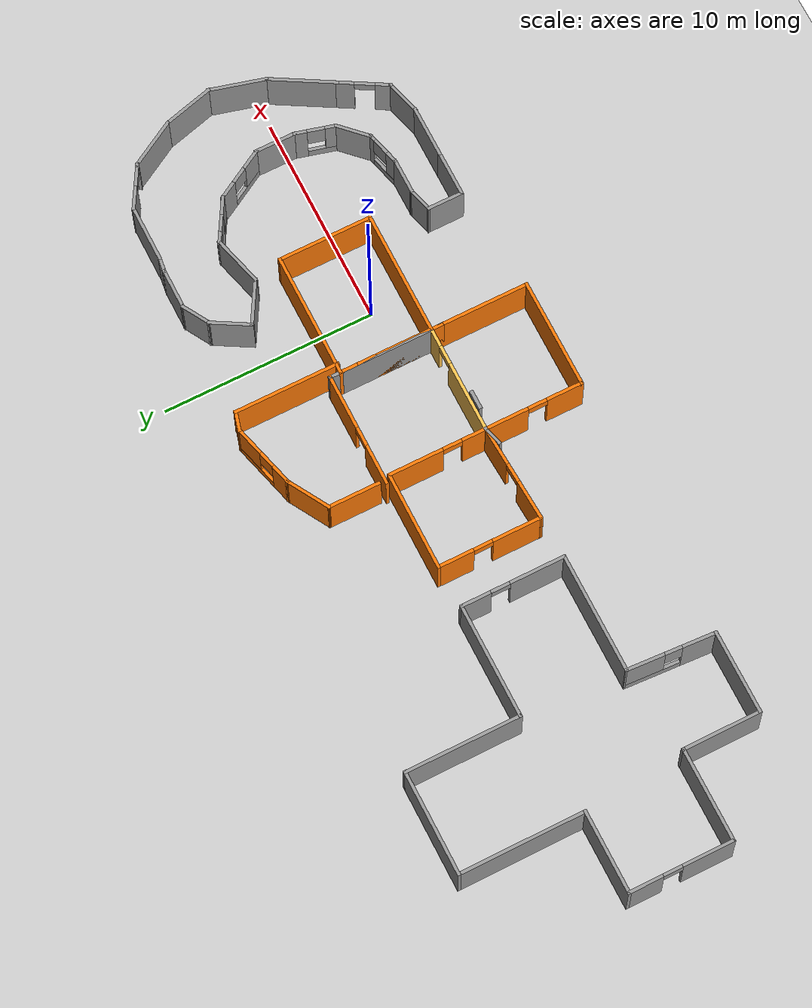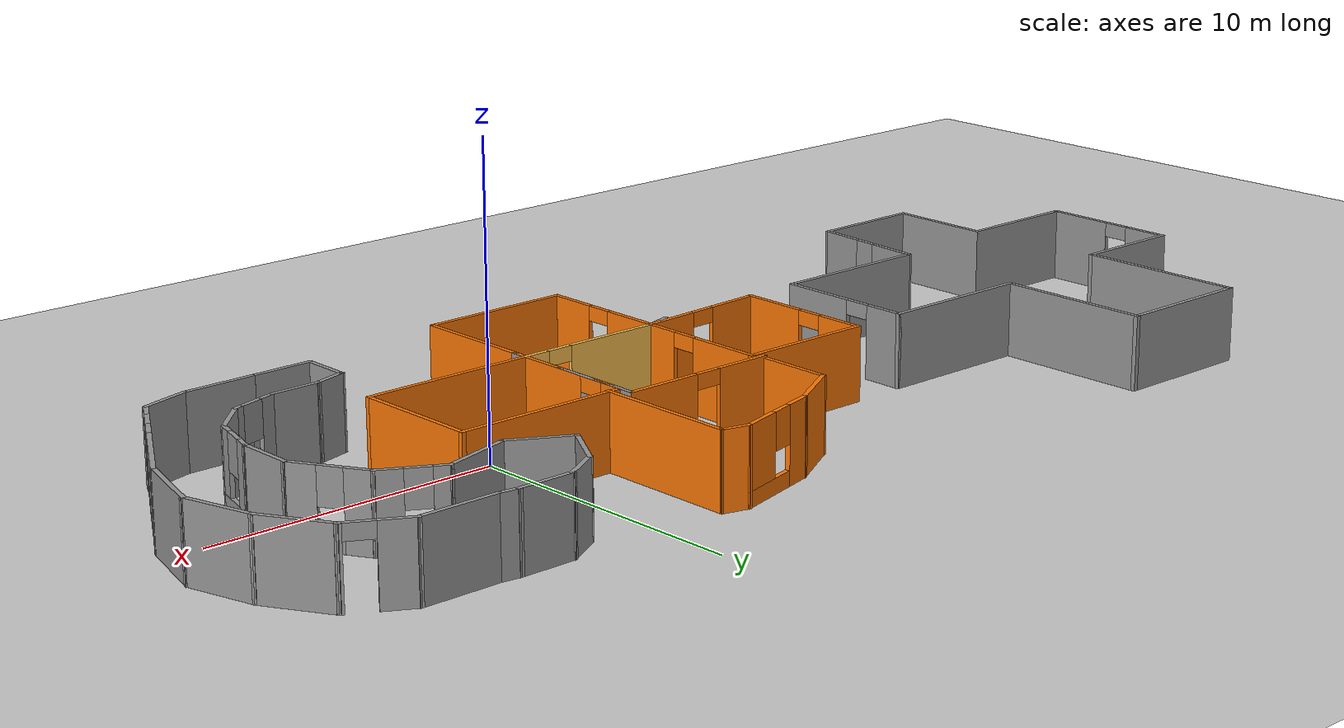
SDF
<sdf version="1.6">
 <world name="default">
  <model name="ground_plane">
   <static>1</static>
   <link name="link">
    <collision name="collision">
     <geometry><plane><normal>0 0 1</normal><size>100 100</size></plane></geometry>
     <surface>
      <contact><collide_bitmask>65535</collide_bitmask></contact>
      <friction><ode><mu>100</mu><mu2>50</mu2></ode></friction>
     </surface>
    </collision>
    <visual name="visual">
     <cast_shadows>0</cast_shadows>
     <geometry><plane><normal>0 0 1</normal><size>100 100</size></plane></geometry>
     <material>
      <script><uri>file://media/materials/scripts/gazebo.material</uri><name>Gazebo/Grey</name></script>
     </material>
    </visual>
   </link>
  </model>
  <model name="Cplusplus">
   <pose>-8.29888 1.0832 0 0 -0 0</pose>
   <link name="Door_1">
    <collision name="Door_1_Collision">
     <geometry><box><size>0.9 0.17 2</size></box></geometry>
     <pose>0 0 1 0 -0 0</pose>
    </collision>
    <visual name="Door_1_Visual">
     <pose>0 0 1 0 -0 0</pose>
     <geometry><box><size>0.9 0.17 2</size></box></geometry>
     <material>
      <script><uri>file://media/materials/scripts/gazebo.material</uri><name>Gazebo/Grey</name></script>
     </material>
    </visual>
    <pose>2.05873 -2.95917 0 0 -0 0</pose>
   </link>
   <link name="Wall_10">
    <pose>-4.07558 -0.465829 0 0 0 -1.5708</pose>
    <visual name="Wall_10_Visual_0">
     <pose>-1.63477 0 1.25 0 -0 0</pose>
     <geometry><box><size>1.73046 0.15 2.5</size></box></geometry>
     <material>
      <script><uri>file://media/materials/scripts/gazebo.material</uri><name>Gazebo/Grey</name></script>
      <ambient>0.996078 0.47451 0.0196078 1</ambient>
     </material>
     <meta><layer>0</layer></meta>
    </visual>
    <collision name="Wall_10_Collision_0">
     <geometry><box><size>1.73046 0.15 2.5</size></box></geometry>
     <pose>-1.63477 0 1.25 0 -0 0</pose>
    </collision>
    <visual name="Wall_10_Visual_1">
     <pose>1.31523 0 1.25 0 -0 0</pose>
     <geometry><box><size>2.36954 0.15 2.5</size></box></geometry>
     <material>
      <script><uri>file://media/materials/scripts/gazebo.material</uri><name>Gazebo/Grey</name></script>
      <ambient>0.996078 0.47451 0.0196078 1</ambient>
     </material>
     <meta><layer>0</layer></meta>
    </visual>
    <collision name="Wall_10_Collision_1">
     <geometry><box><size>2.36954 0.15 2.5</size></box></geometry>
     <pose>1.31523 0 1.25 0 -0 0</pose>
    </collision>
    <visual name="Wall_10_Visual_2">
     <pose>-0.319538 0 2.25 0 -0 0</pose>
     <geometry><box><size>0.9 0.15 0.5</size></box></geometry>
     <material>
      <script><uri>file://media/materials/scripts/gazebo.material</uri><name>Gazebo/Grey</name></script>
      <ambient>0.996078 0.47451 0.0196078 1</ambient>
     </material>
     <meta><layer>0</layer></meta>
    </visual>
    <collision name="Wall_10_Collision_2">
     <geometry><box><size>0.9 0.15 0.5</size></box></geometry>
     <pose>-0.319538 0 2.25 0 -0 0</pose>
    </collision>
   </link>
   <link name="Wall_11">
    <pose>-1.77558 -2.76583 0 0 -0 0.054294</pose>
    <visual name="Wall_11_Visual_0">
     <pose>-1.40985 0 1.25 0 -0 0</pose>
     <geometry><box><size>1.9371 0.15 2.5</size></box></geometry>
     <material>
      <script><uri>file://media/materials/scripts/gazebo.material</uri><name>Gazebo/Grey</name></script>
      <ambient>0.996078 0.47451 0.0196078 1</ambient>
     </material>
     <meta><layer>0</layer></meta>
    </visual>
    <collision name="Wall_11_Collision_0">
     <geometry><box><size>1.9371 0.15 2.5</size></box></geometry>
     <pose>-1.40985 0 1.25 0 -0 0</pose>
    </collision>
    <visual name="Wall_11_Visual_1">
     <pose>1.41855 0 1.25 0 -0 0</pose>
     <geometry><box><size>1.91969 0.15 2.5</size></box></geometry>
     <material>
      <script><uri>file://media/materials/scripts/gazebo.material</uri><name>Gazebo/Grey</name></script>
      <ambient>0.996078 0.47451 0.0196078 1</ambient>
     </material>
     <meta><layer>0</layer></meta>
    </visual>
    <collision name="Wall_11_Collision_1">
     <geometry><box><size>1.91969 0.15 2.5</size></box></geometry>
     <pose>1.41855 0 1.25 0 -0 0</pose>
    </collision>
    <visual name="Wall_11_Visual_2">
     <pose>0.008704 0 2.25 0 -0 0</pose>
     <geometry><box><size>0.9 0.15 0.5</size></box></geometry>
     <material>
      <script><uri>file://media/materials/scripts/gazebo.material</uri><name>Gazebo/Grey</name></script>
      <ambient>0.996078 0.47451 0.0196078 1</ambient>
     </material>
     <meta><layer>0</layer></meta>
    </visual>
    <collision name="Wall_11_Collision_2">
     <geometry><box><size>0.9 0.15 0.5</size></box></geometry>
     <pose>0.008704 0 2.25 0 -0 0</pose>
    </collision>
   </link>
   <link name="Wall_12">
    <collision name="Wall_12_Collision">
     <geometry><box><size>1 0.15 2.5</size></box></geometry>
     <pose>0 0 1.25 0 -0 0</pose>
    </collision>
    <visual name="Wall_12_Visual">
     <pose>0 0 1.25 0 -0 0</pose>
     <geometry><box><size>1 0.15 2.5</size></box></geometry>
     <material>
      <script><uri>file://media/materials/scripts/gazebo.material</uri><name>Gazebo/Grey</name></script>
      <ambient>0 0 0 0</ambient>
     </material>
     <meta><layer>0</layer></meta>
    </visual>
    <pose>0.113905 -2.75083 0 0 0 -2.87979</pose>
   </link>
   <link name="Wall_13">
    <pose>0.524424 -4.94083 0 0 0 -1.5708</pose>
    <visual name="Wall_13_Visual_0">
     <pose>-1.32659 0 1.25 0 -0 0</pose>
     <geometry><box><size>2.09682 0.15 2.5</size></box></geometry>
     <material>
      <script><uri>file://media/materials/scripts/gazebo.material</uri><name>Gazebo/Grey</name></script>
      <ambient>0.996078 0.47451 0.0196078 1</ambient>
     </material>
     <meta><layer>0</layer></meta>
    </visual>
    <collision name="Wall_13_Collision_0">
     <geometry><box><size>2.09682 0.15 2.5</size></box></geometry>
     <pose>-1.32659 0 1.25 0 -0 0</pose>
    </collision>
    <visual name="Wall_13_Visual_1">
     <pose>1.49841 0 1.25 0 -0 0</pose>
     <geometry><box><size>1.75318 0.15 2.5</size></box></geometry>
     <material>
      <script><uri>file://media/materials/scripts/gazebo.material</uri><name>Gazebo/Grey</name></script>
      <ambient>0.996078 0.47451 0.0196078 1</ambient>
     </material>
     <meta><layer>0</layer></meta>
    </visual>
    <collision name="Wall_13_Collision_1">
     <geometry><box><size>1.75318 0.15 2.5</size></box></geometry>
     <pose>1.49841 0 1.25 0 -0 0</pose>
    </collision>
    <visual name="Wall_13_Visual_2">
     <pose>0.171817 0 2.25 0 -0 0</pose>
     <geometry><box><size>0.9 0.15 0.5</size></box></geometry>
     <material>
      <script><uri>file://media/materials/scripts/gazebo.material</uri><name>Gazebo/Grey</name></script>
      <ambient>0.996078 0.47451 0.0196078 1</ambient>
     </material>
     <meta><layer>0</layer></meta>
    </visual>
    <collision name="Wall_13_Collision_2">
     <geometry><box><size>0.9 0.15 0.5</size></box></geometry>
     <pose>0.171817 0 2.25 0 -0 0</pose>
    </collision>
   </link>
   <link name="Wall_14">
    <collision name="Wall_14_Collision">
     <geometry><box><size>5.25 0.15 2.5</size></box></geometry>
     <pose>0 0 1.25 0 -0 0</pose>
    </collision>
    <visual name="Wall_14_Visual">
     <pose>0 0 1.25 0 -0 0</pose>
     <geometry><box><size>5.25 0.15 2.5</size></box></geometry>
     <material>
      <script><uri>file://media/materials/scripts/gazebo.material</uri><name>Gazebo/Grey</name></script>
      <ambient>0.996078 0.47451 0.0196078 1</ambient>
     </material>
     <meta><layer>0</layer></meta>
    </visual>
    <pose>3.07442 -7.24083 0 0 -0 0</pose>
   </link>
   <link name="Wall_15">
    <collision name="Wall_15_Collision">
     <geometry><box><size>4.25 0.15 2.5</size></box></geometry>
     <pose>0 0 1.25 0 -0 0</pose>
    </collision>
    <visual name="Wall_15_Visual">
     <pose>0 0 1.25 0 -0 0</pose>
     <geometry><box><size>4.25 0.15 2.5</size></box></geometry>
     <material>
      <script><uri>file://media/materials/scripts/gazebo.material</uri><name>Gazebo/Grey</name></script>
      <ambient>0.996078 0.47451 0.0196078 1</ambient>
     </material>
     <meta><layer>0</layer></meta>
    </visual>
    <pose>5.62442 -5.19083 0 0 -0 1.5708</pose>
   </link>
   <link name="Wall_16">
    <collision name="Wall_16_Collision">
     <geometry><box><size>0.65 0.15 2.5</size></box></geometry>
     <pose>0 0 1.25 0 -0 0</pose>
    </collision>
    <visual name="Wall_16_Visual">
     <pose>0 0 1.25 0 -0 0</pose>
     <geometry><box><size>0.65 0.15 2.5</size></box></geometry>
     <material>
      <script><uri>file://media/materials/scripts/gazebo.material</uri><name>Gazebo/Grey</name></script>
      <ambient>1 1 1 1</ambient>
     </material>
     <meta><layer>0</layer></meta>
    </visual>
    <pose>5.62442 -2.89083 0 0 -0 1.5708</pose>
   </link>
   <link name="Wall_17">
    <collision name="Wall_17_Collision">
     <geometry><box><size>6 0.15 2.5</size></box></geometry>
     <pose>0 0 1.25 0 -0 0</pose>
    </collision>
    <visual name="Wall_17_Visual">
     <pose>0 0 1.25 0 -0 0</pose>
     <geometry><box><size>6 0.15 2.5</size></box></geometry>
     <material>
      <script><uri>file://media/materials/scripts/gazebo.material</uri><name>Gazebo/Grey</name></script>
      <ambient>0.996078 0.47451 0.0196078 1</ambient>
     </material>
     <meta><layer>0</layer></meta>
    </visual>
    <pose>8.54942 -2.64083 0 0 -0 0</pose>
   </link>
   <link name="Wall_18">
    <collision name="Wall_18_Collision">
     <geometry><box><size>4.5 0.15 2.5</size></box></geometry>
     <pose>0 0 1.25 0 -0 0</pose>
    </collision>
    <visual name="Wall_18_Visual">
     <pose>0 0 1.25 0 -0 0</pose>
     <geometry><box><size>4.5 0.15 2.5</size></box></geometry>
     <material>
      <script><uri>file://media/materials/scripts/gazebo.material</uri><name>Gazebo/Grey</name></script>
      <ambient>0.996078 0.47451 0.0196078 1</ambient>
     </material>
     <meta><layer>0</layer></meta>
    </visual>
    <pose>11.4744 -0.465829 0 0 -0 1.5708</pose>
   </link>
   <link name="Wall_19">
    <collision name="Wall_19_Collision">
     <geometry><box><size>6 0.15 2.5</size></box></geometry>
     <pose>0 0 1.25 0 -0 0</pose>
    </collision>
    <visual name="Wall_19_Visual">
     <pose>0 0 1.25 0 -0 0</pose>
     <geometry><box><size>6 0.15 2.5</size></box></geometry>
     <material>
      <script><uri>file://media/materials/scripts/gazebo.material</uri><name>Gazebo/Grey</name></script>
      <ambient>0.996078 0.47451 0.0196078 1</ambient>
     </material>
     <meta><layer>0</layer></meta>
    </visual>
    <pose>8.54942 1.70917 0 0 -0 3.14159</pose>
   </link>
   <link name="Wall_20">
    <pose>5.62442 -0.715829 0 0 0 -1.5708</pose>
    <visual name="Wall_20_Visual_0">
     <pose>-2.0582 0 1.25 0 -0 0</pose>
     <geometry><box><size>0.883603 0.15 2.5</size></box></geometry>
     <material>
      <script><uri>file://media/materials/scripts/gazebo.material</uri><name>Gazebo/Grey</name></script>
      <ambient>0.996078 0.47451 0.0196078 1</ambient>
     </material>
     <meta><layer>0</layer></meta>
    </visual>
    <collision name="Wall_20_Collision_0">
     <geometry><box><size>0.883603 0.15 2.5</size></box></geometry>
     <pose>-2.0582 0 1.25 0 -0 0</pose>
    </collision>
    <visual name="Wall_20_Visual_1">
     <pose>0.891801 0 1.25 0 -0 0</pose>
     <geometry><box><size>3.2164 0.15 2.5</size></box></geometry>
     <material>
      <script><uri>file://media/materials/scripts/gazebo.material</uri><name>Gazebo/Grey</name></script>
      <ambient>0.996078 0.47451 0.0196078 1</ambient>
     </material>
     <meta><layer>0</layer></meta>
    </visual>
    <collision name="Wall_20_Collision_1">
     <geometry><box><size>3.2164 0.15 2.5</size></box></geometry>
     <pose>0.891801 0 1.25 0 -0 0</pose>
    </collision>
    <visual name="Wall_20_Visual_2">
     <pose>-1.1664 0 2.25 0 -0 0</pose>
     <geometry><box><size>0.9 0.15 0.5</size></box></geometry>
     <material>
      <script><uri>file://media/materials/scripts/gazebo.material</uri><name>Gazebo/Grey</name></script>
      <ambient>0.996078 0.47451 0.0196078 1</ambient>
     </material>
     <meta><layer>0</layer></meta>
    </visual>
    <collision name="Wall_20_Collision_2">
     <geometry><box><size>0.9 0.15 0.5</size></box></geometry>
     <pose>-1.1664 0 2.25 0 -0 0</pose>
    </collision>
   </link>
   <link name="Wall_22">
    <collision name="Wall_22_Collision">
     <geometry><box><size>2.5 0.15 2.5</size></box></geometry>
     <pose>0 0 1.25 0 -0 0</pose>
    </collision>
    <visual name="Wall_22_Visual">
     <pose>0 0 1.25 0 -0 0</pose>
     <geometry><box><size>2.5 0.15 2.5</size></box></geometry>
     <material>
      <script><uri>file://media/materials/scripts/gazebo.material</uri><name>Gazebo/Grey</name></script>
      <ambient>0.996078 0.47451 0.0196078 1</ambient>
     </material>
     <meta><layer>0</layer></meta>
    </visual>
    <pose>0.39748 3.69181 0 0 -0 1.5708</pose>
   </link>
   <link name="Wall_23">
    <collision name="Wall_23_Collision">
     <geometry><box><size>2.25 0.15 2.5</size></box></geometry>
     <pose>0 0 1.25 0 -0 0</pose>
    </collision>
    <visual name="Wall_23_Visual">
     <pose>0 0 1.25 0 -0 0</pose>
     <geometry><box><size>2.25 0.15 2.5</size></box></geometry>
     <material>
      <script><uri>file://media/materials/scripts/gazebo.material</uri><name>Gazebo/Grey</name></script>
      <ambient>0.996078 0.47451 0.0196078 1</ambient>
     </material>
     <meta><layer>0</layer></meta>
    </visual>
    <pose>1.30681 5.39181 0 0 -0 0.523599</pose>
   </link>
   <link name="Wall_24">
    <pose>3.71332 6.31798 0 0 -0 0.261799</pose>
    <visual name="Wall_24_Visual_0">
     <pose>-1.12345 0 1.25 0 -0 0</pose>
     <geometry><box><size>1.00309 0.15 2.5</size></box></geometry>
     <material>
      <script><uri>file://media/materials/scripts/gazebo.material</uri><name>Gazebo/Grey</name></script>
      <ambient>0.996078 0.47451 0.0196078 1</ambient>
     </material>
     <meta><layer>0</layer></meta>
    </visual>
    <collision name="Wall_24_Collision_0">
     <geometry><box><size>1.00309 0.15 2.5</size></box></geometry>
     <pose>-1.12345 0 1.25 0 -0 0</pose>
    </collision>
    <visual name="Wall_24_Visual_1">
     <pose>0.501546 0 0.25 0 -0 0</pose>
     <geometry><box><size>2.24691 0.15 0.5</size></box></geometry>
     <material>
      <script><uri>file://media/materials/scripts/gazebo.material</uri><name>Gazebo/Grey</name></script>
      <ambient>0.996078 0.47451 0.0196078 1</ambient>
     </material>
     <meta><layer>0</layer></meta>
    </visual>
    <collision name="Wall_24_Collision_1">
     <geometry><box><size>2.24691 0.15 0.5</size></box></geometry>
     <pose>0.501546 0 0.25 0 -0 0</pose>
    </collision>
    <visual name="Wall_24_Visual_2">
     <pose>0.901546 0 1.5 0 -0 0</pose>
     <geometry><box><size>1.44691 0.15 2</size></box></geometry>
     <material>
      <script><uri>file://media/materials/scripts/gazebo.material</uri><name>Gazebo/Grey</name></script>
      <ambient>0.996078 0.47451 0.0196078 1</ambient>
     </material>
     <meta><layer>0</layer></meta>
    </visual>
    <collision name="Wall_24_Collision_2">
     <geometry><box><size>1.44691 0.15 2</size></box></geometry>
     <pose>0.901546 0 1.5 0 -0 0</pose>
    </collision>
    <visual name="Wall_24_Visual_3">
     <pose>-0.221908 0 1.9 0 -0 0</pose>
     <geometry><box><size>0.8 0.15 1.2</size></box></geometry>
     <material>
      <script><uri>file://media/materials/scripts/gazebo.material</uri><name>Gazebo/Grey</name></script>
      <ambient>0.996078 0.47451 0.0196078 1</ambient>
     </material>
     <meta><layer>0</layer></meta>
    </visual>
    <collision name="Wall_24_Collision_3">
     <geometry><box><size>0.8 0.15 1.2</size></box></geometry>
     <pose>-0.221908 0 1.9 0 -0 0</pose>
    </collision>
   </link>
   <link name="Wall_25">
    <collision name="Wall_25_Collision">
     <geometry><box><size>1 0.15 2.5</size></box></geometry>
     <pose>0 0 1.25 0 -0 0</pose>
    </collision>
    <visual name="Wall_25_Visual">
     <pose>0 0 1.25 0 -0 0</pose>
     <geometry><box><size>1 0.15 2.5</size></box></geometry>
     <material>
      <script><uri>file://media/materials/scripts/gazebo.material</uri><name>Gazebo/Grey</name></script>
      <ambient>0.996078 0.47451 0.0196078 1</ambient>
     </material>
     <meta><layer>0</layer></meta>
    </visual>
    <pose>5.62102 6.60915 0 0 0 -0.261799</pose>
   </link>
   <link name="Wall_26">
    <collision name="Wall_26_Collision">
     <geometry><box><size>5 0.15 2.5</size></box></geometry>
     <pose>0 0 1.25 0 -0 0</pose>
    </collision>
    <visual name="Wall_26_Visual">
     <pose>0 0 1.25 0 -0 0</pose>
     <geometry><box><size>5 0.15 2.5</size></box></geometry>
     <material>
      <script><uri>file://media/materials/scripts/gazebo.material</uri><name>Gazebo/Grey</name></script>
      <ambient>0.996078 0.47451 0.0196078 1</ambient>
     </material>
     <meta><layer>0</layer></meta>
    </visual>
    <pose>6.03154 4.07415 0 0 0 -1.5708</pose>
   </link>
   <link name="Wall_28">
    <collision name="Wall_28_Collision">
     <geometry><box><size>2 0.15 2.5</size></box></geometry>
     <pose>0 0 1.25 0 -0 0</pose>
    </collision>
    <visual name="Wall_28_Visual">
     <pose>0 0 1.25 0 -0 0</pose>
     <geometry><box><size>2 0.15 2.5</size></box></geometry>
     <material>
      <script><uri>file://media/materials/scripts/gazebo.material</uri><name>Gazebo/Grey</name></script>
      <ambient>1 1 1 1</ambient>
     </material>
     <meta><layer>0</layer></meta>
    </visual>
    <pose>12.3318 6.39307 0 0 -0 3.14159</pose>
   </link>
   <link name="Wall_29">
    <collision name="Wall_29_Collision">
     <geometry><box><size>1.5 0.15 2.5</size></box></geometry>
     <pose>0 0 1.25 0 -0 0</pose>
    </collision>
    <visual name="Wall_29_Visual">
     <pose>0 0 1.25 0 -0 0</pose>
     <geometry><box><size>1.5 0.15 2.5</size></box></geometry>
     <material>
      <script><uri>file://media/materials/scripts/gazebo.material</uri><name>Gazebo/Grey</name></script>
      <ambient>1 1 1 1</ambient>
     </material>
     <meta><layer>0</layer></meta>
    </visual>
    <pose>10.8222 6.05557 0 0 0 -2.61799</pose>
   </link>
   <link name="Wall_30">
    <collision name="Wall_30_Collision">
     <geometry><box><size>2 0.15 2.5</size></box></geometry>
     <pose>0 0 1.25 0 -0 0</pose>
    </collision>
    <visual name="Wall_30_Visual">
     <pose>0 0 1.25 0 -0 0</pose>
     <geometry><box><size>2 0.15 2.5</size></box></geometry>
     <material>
      <script><uri>file://media/materials/scripts/gazebo.material</uri><name>Gazebo/Grey</name></script>
      <ambient>1 1 1 1</ambient>
     </material>
     <meta><layer>0</layer></meta>
    </visual>
    <pose>9.77517 4.91699 0 0 0 -2.0944</pose>
   </link>
   <link name="Wall_31">
    <collision name="Wall_31_Collision">
     <geometry><box><size>2.25 0.15 2.5</size></box></geometry>
     <pose>0 0 1.25 0 -0 0</pose>
    </collision>
    <visual name="Wall_31_Visual">
     <pose>0 0 1.25 0 -0 0</pose>
     <geometry><box><size>2.25 0.15 2.5</size></box></geometry>
     <material>
      <script><uri>file://media/materials/scripts/gazebo.material</uri><name>Gazebo/Grey</name></script>
      <ambient>1 1 1 1</ambient>
     </material>
     <meta><layer>0</layer></meta>
    </visual>
    <pose>10.222 3.59092 0 0 0 -0.523599</pose>
   </link>
   <link name="Wall_32">
    <collision name="Wall_32_Collision">
     <geometry><box><size>2.5 0.15 2.5</size></box></geometry>
     <pose>0 0 1.25 0 -0 0</pose>
    </collision>
    <visual name="Wall_32_Visual">
     <pose>0 0 1.25 0 -0 0</pose>
     <geometry><box><size>2.5 0.15 2.5</size></box></geometry>
     <material>
      <script><uri>file://media/materials/scripts/gazebo.material</uri><name>Gazebo/Grey</name></script>
      <ambient>1 1 1 1</ambient>
     </material>
     <meta><layer>0</layer></meta>
    </visual>
    <pose>12.2663 3.37003 0 0 -0 0.261799</pose>
   </link>
   <link name="Wall_33">
    <pose>14.3106 3.14914 0 0 0 -0.523599</pose>
    <visual name="Wall_33_Visual_0">
     <pose>-0.843094 0 1.25 0 -0 0</pose>
     <geometry><box><size>0.563813 0.15 2.5</size></box></geometry>
     <material>
      <script><uri>file://media/materials/scripts/gazebo.material</uri><name>Gazebo/Grey</name></script>
      <ambient>1 1 1 1</ambient>
     </material>
     <meta><layer>0</layer></meta>
    </visual>
    <collision name="Wall_33_Collision_0">
     <geometry><box><size>0.563813 0.15 2.5</size></box></geometry>
     <pose>-0.843094 0 1.25 0 -0 0</pose>
    </collision>
    <visual name="Wall_33_Visual_1">
     <pose>0.281906 0 0.25 0 -0 0</pose>
     <geometry><box><size>1.68619 0.15 0.5</size></box></geometry>
     <material>
      <script><uri>file://media/materials/scripts/gazebo.material</uri><name>Gazebo/Grey</name></script>
      <ambient>1 1 1 1</ambient>
     </material>
     <meta><layer>0</layer></meta>
    </visual>
    <collision name="Wall_33_Collision_1">
     <geometry><box><size>1.68619 0.15 0.5</size></box></geometry>
     <pose>0.281906 0 0.25 0 -0 0</pose>
    </collision>
    <visual name="Wall_33_Visual_2">
     <pose>0.681906 0 1.5 0 -0 0</pose>
     <geometry><box><size>0.886187 0.15 2</size></box></geometry>
     <material>
      <script><uri>file://media/materials/scripts/gazebo.material</uri><name>Gazebo/Grey</name></script>
      <ambient>1 1 1 1</ambient>
     </material>
     <meta><layer>0</layer></meta>
    </visual>
    <collision name="Wall_33_Collision_2">
     <geometry><box><size>0.886187 0.15 2</size></box></geometry>
     <pose>0.681906 0 1.5 0 -0 0</pose>
    </collision>
    <visual name="Wall_33_Visual_3">
     <pose>-0.161187 0 1.9 0 -0 0</pose>
     <geometry><box><size>0.8 0.15 1.2</size></box></geometry>
     <material>
      <script><uri>file://media/materials/scripts/gazebo.material</uri><name>Gazebo/Grey</name></script>
      <ambient>1 1 1 1</ambient>
     </material>
     <meta><layer>0</layer></meta>
    </visual>
    <collision name="Wall_33_Collision_3">
     <geometry><box><size>0.8 0.15 1.2</size></box></geometry>
     <pose>-0.161187 0 1.9 0 -0 0</pose>
    </collision>
   </link>
   <link name="Wall_34">
    <pose>15.8699 1.49831 0 0 0 -1.0472</pose>
    <visual name="Wall_34_Visual_0">
     <pose>-0.914638 0 1.25 0 -0 0</pose>
     <geometry><box><size>0.920725 0.15 2.5</size></box></geometry>
     <material>
      <script><uri>file://media/materials/scripts/gazebo.material</uri><name>Gazebo/Grey</name></script>
      <ambient>1 1 1 1</ambient>
     </material>
     <meta><layer>0</layer></meta>
    </visual>
    <collision name="Wall_34_Collision_0">
     <geometry><box><size>0.920725 0.15 2.5</size></box></geometry>
     <pose>-0.914638 0 1.25 0 -0 0</pose>
    </collision>
    <visual name="Wall_34_Visual_1">
     <pose>0.460362 0 0.25 0 -0 0</pose>
     <geometry><box><size>1.82927 0.15 0.5</size></box></geometry>
     <material>
      <script><uri>file://media/materials/scripts/gazebo.material</uri><name>Gazebo/Grey</name></script>
      <ambient>1 1 1 1</ambient>
     </material>
     <meta><layer>0</layer></meta>
    </visual>
    <collision name="Wall_34_Collision_1">
     <geometry><box><size>1.82927 0.15 0.5</size></box></geometry>
     <pose>0.460362 0 0.25 0 -0 0</pose>
    </collision>
    <visual name="Wall_34_Visual_2">
     <pose>0.860362 0 1.5 0 -0 0</pose>
     <geometry><box><size>1.02927 0.15 2</size></box></geometry>
     <material>
      <script><uri>file://media/materials/scripts/gazebo.material</uri><name>Gazebo/Grey</name></script>
      <ambient>1 1 1 1</ambient>
     </material>
     <meta><layer>0</layer></meta>
    </visual>
    <collision name="Wall_34_Collision_2">
     <geometry><box><size>1.02927 0.15 2</size></box></geometry>
     <pose>0.860362 0 1.5 0 -0 0</pose>
    </collision>
    <visual name="Wall_34_Visual_3">
     <pose>-0.054275 0 1.9 0 -0 0</pose>
     <geometry><box><size>0.8 0.15 1.2</size></box></geometry>
     <material>
      <script><uri>file://media/materials/scripts/gazebo.material</uri><name>Gazebo/Grey</name></script>
      <ambient>1 1 1 1</ambient>
     </material>
     <meta><layer>0</layer></meta>
    </visual>
    <collision name="Wall_34_Collision_3">
     <geometry><box><size>0.8 0.15 1.2</size></box></geometry>
     <pose>-0.054275 0 1.9 0 -0 0</pose>
    </collision>
   </link>
   <link name="Wall_35">
    <collision name="Wall_35_Collision">
     <geometry><box><size>2 0.15 2.5</size></box></geometry>
     <pose>0 0 1.25 0 -0 0</pose>
    </collision>
    <visual name="Wall_35_Visual">
     <pose>0 0 1.25 0 -0 0</pose>
     <geometry><box><size>2 0.15 2.5</size></box></geometry>
     <material>
      <script><uri>file://media/materials/scripts/gazebo.material</uri><name>Gazebo/Grey</name></script>
      <ambient>1 1 1 1</ambient>
     </material>
     <meta><layer>0</layer></meta>
    </visual>
    <pose>16.5199 -0.552522 0 0 0 -1.5708</pose>
   </link>
   <link name="Wall_36">
    <pose>16.2805 -2.371 0 0 0 -1.8326</pose>
    <visual name="Wall_36_Visual_0">
     <pose>-0.686343 0 1.25 0 -0 0</pose>
     <geometry><box><size>0.627315 0.15 2.5</size></box></geometry>
     <material>
      <script><uri>file://media/materials/scripts/gazebo.material</uri><name>Gazebo/Grey</name></script>
      <ambient>1 1 1 1</ambient>
     </material>
     <meta><layer>0</layer></meta>
    </visual>
    <collision name="Wall_36_Collision_0">
     <geometry><box><size>0.627315 0.15 2.5</size></box></geometry>
     <pose>-0.686343 0 1.25 0 -0 0</pose>
    </collision>
    <visual name="Wall_36_Visual_1">
     <pose>0.313657 0 0.25 0 -0 0</pose>
     <geometry><box><size>1.37268 0.15 0.5</size></box></geometry>
     <material>
      <script><uri>file://media/materials/scripts/gazebo.material</uri><name>Gazebo/Grey</name></script>
      <ambient>1 1 1 1</ambient>
     </material>
     <meta><layer>0</layer></meta>
    </visual>
    <collision name="Wall_36_Collision_1">
     <geometry><box><size>1.37268 0.15 0.5</size></box></geometry>
     <pose>0.313657 0 0.25 0 -0 0</pose>
    </collision>
    <visual name="Wall_36_Visual_2">
     <pose>0.713657 0 1.5 0 -0 0</pose>
     <geometry><box><size>0.572685 0.15 2</size></box></geometry>
     <material>
      <script><uri>file://media/materials/scripts/gazebo.material</uri><name>Gazebo/Grey</name></script>
      <ambient>1 1 1 1</ambient>
     </material>
     <meta><layer>0</layer></meta>
    </visual>
    <collision name="Wall_36_Collision_2">
     <geometry><box><size>0.572685 0.15 2</size></box></geometry>
     <pose>0.713657 0 1.5 0 -0 0</pose>
    </collision>
    <visual name="Wall_36_Visual_3">
     <pose>0.027315 0 1.9 0 -0 0</pose>
     <geometry><box><size>0.8 0.15 1.2</size></box></geometry>
     <material>
      <script><uri>file://media/materials/scripts/gazebo.material</uri><name>Gazebo/Grey</name></script>
      <ambient>1 1 1 1</ambient>
     </material>
     <meta><layer>0</layer></meta>
    </visual>
    <collision name="Wall_36_Collision_3">
     <geometry><box><size>0.8 0.15 1.2</size></box></geometry>
     <pose>0.027315 0 1.9 0 -0 0</pose>
    </collision>
   </link>
   <link name="Wall_37">
    <collision name="Wall_37_Collision">
     <geometry><box><size>1.75 0.15 2.5</size></box></geometry>
     <pose>0 0 1.25 0 -0 0</pose>
    </collision>
    <visual name="Wall_37_Visual">
     <pose>0 0 1.25 0 -0 0</pose>
     <geometry><box><size>1.75 0.15 2.5</size></box></geometry>
     <material>
      <script><uri>file://media/materials/scripts/gazebo.material</uri><name>Gazebo/Grey</name></script>
      <ambient>1 1 1 1</ambient>
     </material>
     <meta><layer>0</layer></meta>
    </visual>
    <pose>15.4754 -3.83017 0 0 0 -2.35619</pose>
   </link>
   <link name="Wall_38">
    <pose>14.137 -4.60291 0 0 0 -2.87979</pose>
    <visual name="Wall_38_Visual_0">
     <pose>-0.70207 0 1.25 0 -0 0</pose>
     <geometry><box><size>0.34586 0.15 2.5</size></box></geometry>
     <material>
      <script><uri>file://media/materials/scripts/gazebo.material</uri><name>Gazebo/Grey</name></script>
      <ambient>1 1 1 1</ambient>
     </material>
     <meta><layer>0</layer></meta>
    </visual>
    <collision name="Wall_38_Collision_0">
     <geometry><box><size>0.34586 0.15 2.5</size></box></geometry>
     <pose>-0.70207 0 1.25 0 -0 0</pose>
    </collision>
    <visual name="Wall_38_Visual_1">
     <pose>0.17293 0 0.25 0 -0 0</pose>
     <geometry><box><size>1.40414 0.15 0.5</size></box></geometry>
     <material>
      <script><uri>file://media/materials/scripts/gazebo.material</uri><name>Gazebo/Grey</name></script>
      <ambient>1 1 1 1</ambient>
     </material>
     <meta><layer>0</layer></meta>
    </visual>
    <collision name="Wall_38_Collision_1">
     <geometry><box><size>1.40414 0.15 0.5</size></box></geometry>
     <pose>0.17293 0 0.25 0 -0 0</pose>
    </collision>
    <visual name="Wall_38_Visual_2">
     <pose>0.57293 0 1.5 0 -0 0</pose>
     <geometry><box><size>0.60414 0.15 2</size></box></geometry>
     <material>
      <script><uri>file://media/materials/scripts/gazebo.material</uri><name>Gazebo/Grey</name></script>
      <ambient>1 1 1 1</ambient>
     </material>
     <meta><layer>0</layer></meta>
    </visual>
    <collision name="Wall_38_Collision_2">
     <geometry><box><size>0.60414 0.15 2</size></box></geometry>
     <pose>0.57293 0 1.5 0 -0 0</pose>
    </collision>
    <visual name="Wall_38_Visual_3">
     <pose>-0.12914 0 1.9 0 -0 0</pose>
     <geometry><box><size>0.8 0.15 1.2</size></box></geometry>
     <material>
      <script><uri>file://media/materials/scripts/gazebo.material</uri><name>Gazebo/Grey</name></script>
      <ambient>1 1 1 1</ambient>
     </material>
     <meta><layer>0</layer></meta>
    </visual>
    <collision name="Wall_38_Collision_3">
     <geometry><box><size>0.8 0.15 1.2</size></box></geometry>
     <pose>-0.12914 0 1.9 0 -0 0</pose>
    </collision>
   </link>
   <link name="Wall_39">
    <collision name="Wall_39_Collision">
     <geometry><box><size>1.75 0.15 2.5</size></box></geometry>
     <pose>0 0 1.25 0 -0 0</pose>
    </collision>
    <visual name="Wall_39_Visual">
     <pose>0 0 1.25 0 -0 0</pose>
     <geometry><box><size>1.75 0.15 2.5</size></box></geometry>
     <material>
      <script><uri>file://media/materials/scripts/gazebo.material</uri><name>Gazebo/Grey</name></script>
      <ambient>1 1 1 1</ambient>
     </material>
     <meta><layer>0</layer></meta>
    </visual>
    <pose>12.5642 -4.80997 0 0 -0 3.14159</pose>
   </link>
   <link name="Wall_40">
    <collision name="Wall_40_Collision">
     <geometry><box><size>1.25 0.15 2.5</size></box></geometry>
     <pose>0 0 1.25 0 -0 0</pose>
    </collision>
    <visual name="Wall_40_Visual">
     <pose>0 0 1.25 0 -0 0</pose>
     <geometry><box><size>1.25 0.15 2.5</size></box></geometry>
     <material>
      <script><uri>file://media/materials/scripts/gazebo.material</uri><name>Gazebo/Grey</name></script>
      <ambient>1 1 1 1</ambient>
     </material>
     <meta><layer>0</layer></meta>
    </visual>
    <pose>11.233 -4.95232 0 0 0 -2.87979</pose>
   </link>
   <link name="Wall_41">
    <collision name="Wall_41_Collision">
     <geometry><box><size>1.75 0.15 2.5</size></box></geometry>
     <pose>0 0 1.25 0 -0 0</pose>
    </collision>
    <visual name="Wall_41_Visual">
     <pose>0 0 1.25 0 -0 0</pose>
     <geometry><box><size>1.75 0.15 2.5</size></box></geometry>
     <material>
      <script><uri>file://media/materials/scripts/gazebo.material</uri><name>Gazebo/Grey</name></script>
      <ambient>1 1 1 1</ambient>
     </material>
     <meta><layer>0</layer></meta>
    </visual>
    <pose>10.7017 -5.89467 0 0 0 -1.5708</pose>
   </link>
   <link name="Wall_42">
    <collision name="Wall_42_Collision">
     <geometry><box><size>2.25 0.15 2.5</size></box></geometry>
     <pose>0 0 1.25 0 -0 0</pose>
    </collision>
    <visual name="Wall_42_Visual">
     <pose>0 0 1.25 0 -0 0</pose>
     <geometry><box><size>2.25 0.15 2.5</size></box></geometry>
     <material>
      <script><uri>file://media/materials/scripts/gazebo.material</uri><name>Gazebo/Grey</name></script>
      <ambient>1 1 1 1</ambient>
     </material>
     <meta><layer>0</layer></meta>
    </visual>
    <pose>11.7517 -6.69467 0 0 -0 0</pose>
   </link>
   <link name="Wall_43">
    <collision name="Wall_43_Collision">
     <geometry><box><size>2.5 0.15 2.5</size></box></geometry>
     <pose>0 0 1.25 0 -0 0</pose>
    </collision>
    <visual name="Wall_43_Visual">
     <pose>0 0 1.25 0 -0 0</pose>
     <geometry><box><size>2.5 0.15 2.5</size></box></geometry>
     <material>
      <script><uri>file://media/materials/scripts/gazebo.material</uri><name>Gazebo/Grey</name></script>
      <ambient>1 1 1 1</ambient>
     </material>
     <meta><layer>0</layer></meta>
    </visual>
    <pose>13.9767 -6.69467 0 0 -0 0</pose>
   </link>
   <link name="Wall_44">
    <collision name="Wall_44_Collision">
     <geometry><box><size>1.75 0.15 2.5</size></box></geometry>
     <pose>0 0 1.25 0 -0 0</pose>
    </collision>
    <visual name="Wall_44_Visual">
     <pose>0 0 1.25 0 -0 0</pose>
     <geometry><box><size>1.75 0.15 2.5</size></box></geometry>
     <material>
      <script><uri>file://media/materials/scripts/gazebo.material</uri><name>Gazebo/Grey</name></script>
      <ambient>1 1 1 1</ambient>
     </material>
     <meta><layer>0</layer></meta>
    </visual>
    <pose>15.9245 -6.48761 0 0 -0 0.261799</pose>
   </link>
   <link name="Wall_45">
    <pose>17.2847 -5.26298 0 0 -0 1.0472</pose>
    <visual name="Wall_45_Visual_0">
     <pose>-0.860729 0 1.25 0 -0 0</pose>
     <geometry><box><size>0.778542 0.15 2.5</size></box></geometry>
     <material>
      <script><uri>file://media/materials/scripts/gazebo.material</uri><name>Gazebo/Grey</name></script>
      <ambient>1 1 1 1</ambient>
     </material>
     <meta><layer>0</layer></meta>
    </visual>
    <collision name="Wall_45_Collision_0">
     <geometry><box><size>0.778542 0.15 2.5</size></box></geometry>
     <pose>-0.860729 0 1.25 0 -0 0</pose>
    </collision>
    <visual name="Wall_45_Visual_1">
     <pose>0.839271 0 1.25 0 -0 0</pose>
     <geometry><box><size>0.821458 0.15 2.5</size></box></geometry>
     <material>
      <script><uri>file://media/materials/scripts/gazebo.material</uri><name>Gazebo/Grey</name></script>
      <ambient>1 1 1 1</ambient>
     </material>
     <meta><layer>0</layer></meta>
    </visual>
    <collision name="Wall_45_Collision_1">
     <geometry><box><size>0.821458 0.15 2.5</size></box></geometry>
     <pose>0.839271 0 1.25 0 -0 0</pose>
    </collision>
    <visual name="Wall_45_Visual_2">
     <pose>-0.021458 0 2.25 0 -0 0</pose>
     <geometry><box><size>0.9 0.15 0.5</size></box></geometry>
     <material>
      <script><uri>file://media/materials/scripts/gazebo.material</uri><name>Gazebo/Grey</name></script>
      <ambient>1 1 1 1</ambient>
     </material>
     <meta><layer>0</layer></meta>
    </visual>
    <collision name="Wall_45_Collision_2">
     <geometry><box><size>0.9 0.15 0.5</size></box></geometry>
     <pose>-0.021458 0 2.25 0 -0 0</pose>
    </collision>
   </link>
   <link name="Wall_46">
    <collision name="Wall_46_Collision">
     <geometry><box><size>3.25 0.15 2.5</size></box></geometry>
     <pose>0 0 1.25 0 -0 0</pose>
    </collision>
    <visual name="Wall_46_Visual">
     <pose>0 0 1.25 0 -0 0</pose>
     <geometry><box><size>3.25 0.15 2.5</size></box></geometry>
     <material>
      <script><uri>file://media/materials/scripts/gazebo.material</uri><name>Gazebo/Grey</name></script>
      <ambient>1 1 1 1</ambient>
     </material>
     <meta><layer>0</layer></meta>
    </visual>
    <pose>18.6472 -2.90306 0 0 -0 1.0472</pose>
   </link>
   <link name="Wall_47">
    <collision name="Wall_47_Collision">
     <geometry><box><size>2.75 0.15 2.5</size></box></geometry>
     <pose>0 0 1.25 0 -0 0</pose>
    </collision>
    <visual name="Wall_47_Visual">
     <pose>0 0 1.25 0 -0 0</pose>
     <geometry><box><size>2.75 0.15 2.5</size></box></geometry>
     <material>
      <script><uri>file://media/materials/scripts/gazebo.material</uri><name>Gazebo/Grey</name></script>
      <ambient>1 1 1 1</ambient>
     </material>
     <meta><layer>0</layer></meta>
    </visual>
    <pose>19.7587 -0.305015 0 0 -0 1.309</pose>
   </link>
   <link name="Wall_48">
    <collision name="Wall_48_Collision">
     <geometry><box><size>2.5 0.15 2.5</size></box></geometry>
     <pose>0 0 1.25 0 -0 0</pose>
    </collision>
    <visual name="Wall_48_Visual">
     <pose>0 0 1.25 0 -0 0</pose>
     <geometry><box><size>2.5 0.15 2.5</size></box></geometry>
     <material>
      <script><uri>file://media/materials/scripts/gazebo.material</uri><name>Gazebo/Grey</name></script>
      <ambient>1 1 1 1</ambient>
     </material>
     <meta><layer>0</layer></meta>
    </visual>
    <pose>19.791 2.08565 0 0 -0 1.8326</pose>
   </link>
   <link name="Wall_49">
    <collision name="Wall_49_Collision">
     <geometry><box><size>2.5 0.15 2.5</size></box></geometry>
     <pose>0 0 1.25 0 -0 0</pose>
    </collision>
    <visual name="Wall_49_Visual">
     <pose>0 0 1.25 0 -0 0</pose>
     <geometry><box><size>2.5 0.15 2.5</size></box></geometry>
     <material>
      <script><uri>file://media/materials/scripts/gazebo.material</uri><name>Gazebo/Grey</name></script>
      <ambient>1 1 1 1</ambient>
     </material>
     <meta><layer>0</layer></meta>
    </visual>
    <pose>18.8994 4.23819 0 0 -0 2.0944</pose>
   </link>
   <link name="Wall_5">
    <pose>2.94942 2.20917 0 0 -0 0</pose>
    <visual name="Wall_5_Visual_0">
     <pose>-1.76993 0 1.25 0 -0 0</pose>
     <geometry><box><size>1.96013 0.15 2.5</size></box></geometry>
     <material>
      <script><uri>file://media/materials/scripts/gazebo.material</uri><name>Gazebo/Grey</name></script>
      <ambient>0.996078 0.47451 0.0196078 1</ambient>
     </material>
     <meta><layer>0</layer></meta>
    </visual>
    <collision name="Wall_5_Collision_0">
     <geometry><box><size>1.96013 0.15 2.5</size></box></geometry>
     <pose>-1.76993 0 1.25 0 -0 0</pose>
    </collision>
    <visual name="Wall_5_Visual_1">
     <pose>1.43007 0 1.25 0 -0 0</pose>
     <geometry><box><size>2.63987 0.15 2.5</size></box></geometry>
     <material>
      <script><uri>file://media/materials/scripts/gazebo.material</uri><name>Gazebo/Grey</name></script>
      <ambient>0.996078 0.47451 0.0196078 1</ambient>
     </material>
     <meta><layer>0</layer></meta>
    </visual>
    <collision name="Wall_5_Collision_1">
     <geometry><box><size>2.63987 0.15 2.5</size></box></geometry>
     <pose>1.43007 0 1.25 0 -0 0</pose>
    </collision>
    <visual name="Wall_5_Visual_2">
     <pose>-0.339868 0 2.25 0 -0 0</pose>
     <geometry><box><size>0.9 0.15 0.5</size></box></geometry>
     <material>
      <script><uri>file://media/materials/scripts/gazebo.material</uri><name>Gazebo/Grey</name></script>
      <ambient>0.996078 0.47451 0.0196078 1</ambient>
     </material>
     <meta><layer>0</layer></meta>
    </visual>
    <collision name="Wall_5_Collision_2">
     <geometry><box><size>0.9 0.15 0.5</size></box></geometry>
     <pose>-0.339868 0 2.25 0 -0 0</pose>
    </collision>
   </link>
   <link name="Wall_50">
    <pose>17.4026 5.78077 0 0 -0 2.61799</pose>
    <visual name="Wall_50_Visual_0">
     <pose>-1.02593 0 1.25 0 -0 0</pose>
     <geometry><box><size>0.198148 0.15 2.5</size></box></geometry>
     <material>
      <script><uri>file://media/materials/scripts/gazebo.material</uri><name>Gazebo/Grey</name></script>
      <ambient>1 1 1 1</ambient>
     </material>
     <meta><layer>0</layer></meta>
    </visual>
    <collision name="Wall_50_Collision_0">
     <geometry><box><size>0.198148 0.15 2.5</size></box></geometry>
     <pose>-1.02593 0 1.25 0 -0 0</pose>
    </collision>
    <visual name="Wall_50_Visual_1">
     <pose>0.549074 0 1.25 0 -0 0</pose>
     <geometry><box><size>1.15185 0.15 2.5</size></box></geometry>
     <material>
      <script><uri>file://media/materials/scripts/gazebo.material</uri><name>Gazebo/Grey</name></script>
      <ambient>1 1 1 1</ambient>
     </material>
     <meta><layer>0</layer></meta>
    </visual>
    <collision name="Wall_50_Collision_1">
     <geometry><box><size>1.15185 0.15 2.5</size></box></geometry>
     <pose>0.549074 0 1.25 0 -0 0</pose>
    </collision>
    <visual name="Wall_50_Visual_2">
     <pose>-0.476852 0 2.25 0 -0 0</pose>
     <geometry><box><size>0.9 0.15 0.5</size></box></geometry>
     <material>
      <script><uri>file://media/materials/scripts/gazebo.material</uri><name>Gazebo/Grey</name></script>
      <ambient>1 1 1 1</ambient>
     </material>
     <meta><layer>0</layer></meta>
    </visual>
    <collision name="Wall_50_Collision_2">
     <geometry><box><size>0.9 0.15 0.5</size></box></geometry>
     <pose>-0.476852 0 2.25 0 -0 0</pose>
    </collision>
   </link>
   <link name="Wall_51">
    <collision name="Wall_51_Collision">
     <geometry><box><size>2.75 0.15 2.5</size></box></geometry>
     <pose>0 0 1.25 0 -0 0</pose>
    </collision>
    <visual name="Wall_51_Visual">
     <pose>0 0 1.25 0 -0 0</pose>
     <geometry><box><size>2.75 0.15 2.5</size></box></geometry>
     <material>
      <script><uri>file://media/materials/scripts/gazebo.material</uri><name>Gazebo/Grey</name></script>
      <ambient>1 1 1 1</ambient>
     </material>
     <meta><layer>0</layer></meta>
    </visual>
    <pose>15.1933 6.30577 0 0 -0 3.14159</pose>
   </link>
   <link name="Wall_52">
    <collision name="Wall_52_Collision">
     <geometry><box><size>0.792403 0.15 2.5</size></box></geometry>
     <pose>0 0 1.25 0 -0 0</pose>
    </collision>
    <visual name="Wall_52_Visual">
     <pose>0 0 1.25 0 -0 0</pose>
     <geometry><box><size>0.792403 0.15 2.5</size></box></geometry>
     <material>
      <script><uri>file://media/materials/scripts/gazebo.material</uri><name>Gazebo/Grey</name></script>
      <ambient>1 1 1 1</ambient>
     </material>
     <meta><layer>0</layer></meta>
    </visual>
    <pose>13.575 6.34942 0 0 -0 3.00529</pose>
   </link>
   <link name="Wall_54">
    <collision name="Wall_54_Collision">
     <geometry><box><size>5.75 0.15 2.5</size></box></geometry>
     <pose>0 0 1.25 0 -0 0</pose>
    </collision>
    <visual name="Wall_54_Visual">
     <pose>0 0 1.25 0 -0 0</pose>
     <geometry><box><size>5.75 0.15 2.5</size></box></geometry>
     <material>
      <script><uri>file://media/materials/scripts/gazebo.material</uri><name>Gazebo/Grey</name></script>
      <ambient>1 1 1 1</ambient>
     </material>
     <meta><layer>0</layer></meta>
    </visual>
    <pose>-8.86198 -2.95917 0 0 -0 0</pose>
   </link>
   <link name="Wall_55">
    <pose>-6.06198 -0.534171 0 0 -0 1.5708</pose>
    <visual name="Wall_55_Visual_0">
     <pose>-1.17492 0 1.25 0 -0 0</pose>
     <geometry><box><size>2.65015 0.15 2.5</size></box></geometry>
     <material>
      <script><uri>file://media/materials/scripts/gazebo.material</uri><name>Gazebo/Grey</name></script>
      <ambient>1 1 1 1</ambient>
     </material>
     <meta><layer>0</layer></meta>
    </visual>
    <collision name="Wall_55_Collision_0">
     <geometry><box><size>2.65015 0.15 2.5</size></box></geometry>
     <pose>-1.17492 0 1.25 0 -0 0</pose>
    </collision>
    <visual name="Wall_55_Visual_1">
     <pose>1.77507 0 1.25 0 -0 0</pose>
     <geometry><box><size>1.44985 0.15 2.5</size></box></geometry>
     <material>
      <script><uri>file://media/materials/scripts/gazebo.material</uri><name>Gazebo/Grey</name></script>
      <ambient>1 1 1 1</ambient>
     </material>
     <meta><layer>0</layer></meta>
    </visual>
    <collision name="Wall_55_Collision_1">
     <geometry><box><size>1.44985 0.15 2.5</size></box></geometry>
     <pose>1.77507 0 1.25 0 -0 0</pose>
    </collision>
    <visual name="Wall_55_Visual_2">
     <pose>0.600151 0 2.25 0 -0 0</pose>
     <geometry><box><size>0.9 0.15 0.5</size></box></geometry>
     <material>
      <script><uri>file://media/materials/scripts/gazebo.material</uri><name>Gazebo/Grey</name></script>
      <ambient>1 1 1 1</ambient>
     </material>
     <meta><layer>0</layer></meta>
    </visual>
    <collision name="Wall_55_Collision_2">
     <geometry><box><size>0.9 0.15 0.5</size></box></geometry>
     <pose>0.600151 0 2.25 0 -0 0</pose>
    </collision>
   </link>
   <link name="Wall_56">
    <collision name="Wall_56_Collision">
     <geometry><box><size>5.5 0.15 2.5</size></box></geometry>
     <pose>0 0 1.25 0 -0 0</pose>
    </collision>
    <visual name="Wall_56_Visual">
     <pose>0 0 1.25 0 -0 0</pose>
     <geometry><box><size>5.5 0.15 2.5</size></box></geometry>
     <material>
      <script><uri>file://media/materials/scripts/gazebo.material</uri><name>Gazebo/Grey</name></script>
      <ambient>1 1 1 1</ambient>
     </material>
     <meta><layer>0</layer></meta>
    </visual>
    <pose>-8.73698 1.89083 0 0 -0 3.14159</pose>
   </link>
   <link name="Wall_57">
    <collision name="Wall_57_Collision">
     <geometry><box><size>5.5 0.15 2.5</size></box></geometry>
     <pose>0 0 1.25 0 -0 0</pose>
    </collision>
    <visual name="Wall_57_Visual">
     <pose>0 0 1.25 0 -0 0</pose>
     <geometry><box><size>5.5 0.15 2.5</size></box></geometry>
     <material>
      <script><uri>file://media/materials/scripts/gazebo.material</uri><name>Gazebo/Grey</name></script>
      <ambient>1 1 1 1</ambient>
     </material>
     <meta><layer>0</layer></meta>
    </visual>
    <pose>-11.412 4.56583 0 0 -0 1.5708</pose>
   </link>
   <link name="Wall_58">
    <collision name="Wall_58_Collision">
     <geometry><box><size>5 0.15 2.5</size></box></geometry>
     <pose>0 0 1.25 0 -0 0</pose>
    </collision>
    <visual name="Wall_58_Visual">
     <pose>0 0 1.25 0 -0 0</pose>
     <geometry><box><size>5 0.15 2.5</size></box></geometry>
     <material>
      <script><uri>file://media/materials/scripts/gazebo.material</uri><name>Gazebo/Grey</name></script>
      <ambient>1 1 1 1</ambient>
     </material>
     <meta><layer>0</layer></meta>
    </visual>
    <pose>-13.837 7.24083 0 0 -0 3.14159</pose>
   </link>
   <link name="Wall_59">
    <collision name="Wall_59_Collision">
     <geometry><box><size>6 0.15 2.5</size></box></geometry>
     <pose>0 0 1.25 0 -0 0</pose>
    </collision>
    <visual name="Wall_59_Visual">
     <pose>0 0 1.25 0 -0 0</pose>
     <geometry><box><size>6 0.15 2.5</size></box></geometry>
     <material>
      <script><uri>file://media/materials/scripts/gazebo.material</uri><name>Gazebo/Grey</name></script>
      <ambient>1 1 1 1</ambient>
     </material>
     <meta><layer>0</layer></meta>
    </visual>
    <pose>-16.262 4.31583 0 0 0 -1.5708</pose>
   </link>
   <link name="Wall_6">
    <collision name="Wall_6_Collision">
     <geometry><box><size>5 0.15 2.5</size></box></geometry>
     <pose>0 0 1.25 0 -0 0</pose>
    </collision>
    <visual name="Wall_6_Visual">
     <pose>0 0 1.25 0 -0 0</pose>
     <geometry><box><size>5 0.15 2.5</size></box></geometry>
     <material>
      <script><uri>file://media/materials/scripts/gazebo.material</uri><name>Gazebo/Grey</name></script>
      <ambient>1 1 1 1</ambient>
     </material>
     <meta><layer>0</layer></meta>
    </visual>
    <pose>5.62442 -0.215829 0 0 0 -1.5708</pose>
   </link>
   <link name="Wall_60">
    <collision name="Wall_60_Collision">
     <geometry><box><size>4 0.15 2.5</size></box></geometry>
     <pose>0 0 1.25 0 -0 0</pose>
    </collision>
    <visual name="Wall_60_Visual">
     <pose>0 0 1.25 0 -0 0</pose>
     <geometry><box><size>4 0.15 2.5</size></box></geometry>
     <material>
      <script><uri>file://media/materials/scripts/gazebo.material</uri><name>Gazebo/Grey</name></script>
      <ambient>1 1 1 1</ambient>
     </material>
     <meta><layer>0</layer></meta>
    </visual>
    <pose>-18.187 1.39083 0 0 -0 3.14159</pose>
   </link>
   <link name="Wall_61">
    <pose>-20.112 -1.03417 0 0 0 -1.5708</pose>
    <visual name="Wall_61_Visual_0">
     <pose>-1.67129 0 1.25 0 -0 0</pose>
     <geometry><box><size>1.65742 0.15 2.5</size></box></geometry>
     <material>
      <script><uri>file://media/materials/scripts/gazebo.material</uri><name>Gazebo/Grey</name></script>
      <ambient>1 1 1 1</ambient>
     </material>
     <meta><layer>0</layer></meta>
    </visual>
    <collision name="Wall_61_Collision_0">
     <geometry><box><size>1.65742 0.15 2.5</size></box></geometry>
     <pose>-1.67129 0 1.25 0 -0 0</pose>
    </collision>
    <visual name="Wall_61_Visual_1">
     <pose>1.27871 0 1.25 0 -0 0</pose>
     <geometry><box><size>2.44258 0.15 2.5</size></box></geometry>
     <material>
      <script><uri>file://media/materials/scripts/gazebo.material</uri><name>Gazebo/Grey</name></script>
      <ambient>1 1 1 1</ambient>
     </material>
     <meta><layer>0</layer></meta>
    </visual>
    <collision name="Wall_61_Collision_1">
     <geometry><box><size>2.44258 0.15 2.5</size></box></geometry>
     <pose>1.27871 0 1.25 0 -0 0</pose>
    </collision>
    <visual name="Wall_61_Visual_2">
     <pose>-0.39258 0 2.25 0 -0 0</pose>
     <geometry><box><size>0.9 0.15 0.5</size></box></geometry>
     <material>
      <script><uri>file://media/materials/scripts/gazebo.material</uri><name>Gazebo/Grey</name></script>
      <ambient>1 1 1 1</ambient>
     </material>
     <meta><layer>0</layer></meta>
    </visual>
    <collision name="Wall_61_Collision_2">
     <geometry><box><size>0.9 0.15 0.5</size></box></geometry>
     <pose>-0.39258 0 2.25 0 -0 0</pose>
    </collision>
   </link>
   <link name="Wall_62">
    <collision name="Wall_62_Collision">
     <geometry><box><size>4.5 0.15 2.5</size></box></geometry>
     <pose>0 0 1.25 0 -0 0</pose>
    </collision>
    <visual name="Wall_62_Visual">
     <pose>0 0 1.25 0 -0 0</pose>
     <geometry><box><size>4.5 0.15 2.5</size></box></geometry>
     <material>
      <script><uri>file://media/materials/scripts/gazebo.material</uri><name>Gazebo/Grey</name></script>
      <ambient>1 1 1 1</ambient>
     </material>
     <meta><layer>0</layer></meta>
    </visual>
    <pose>-17.937 -3.45917 0 0 -0 0</pose>
   </link>
   <link name="Wall_63">
    <collision name="Wall_63_Collision">
     <geometry><box><size>3.75 0.15 2.5</size></box></geometry>
     <pose>0 0 1.25 0 -0 0</pose>
    </collision>
    <visual name="Wall_63_Visual">
     <pose>0 0 1.25 0 -0 0</pose>
     <geometry><box><size>3.75 0.15 2.5</size></box></geometry>
     <material>
      <script><uri>file://media/materials/scripts/gazebo.material</uri><name>Gazebo/Grey</name></script>
      <ambient>1 1 1 1</ambient>
     </material>
     <meta><layer>0</layer></meta>
    </visual>
    <pose>-15.762 -5.25917 0 0 0 -1.5708</pose>
   </link>
   <link name="Wall_64">
    <collision name="Wall_64_Collision">
     <geometry><box><size>4 0.15 2.5</size></box></geometry>
     <pose>0 0 1.25 0 -0 0</pose>
    </collision>
    <visual name="Wall_64_Visual">
     <pose>0 0 1.25 0 -0 0</pose>
     <geometry><box><size>4 0.15 2.5</size></box></geometry>
     <material>
      <script><uri>file://media/materials/scripts/gazebo.material</uri><name>Gazebo/Grey</name></script>
      <ambient>1 1 1 1</ambient>
     </material>
     <meta><layer>0</layer></meta>
    </visual>
    <pose>-13.837 -7.05917 0 0 -0 0</pose>
   </link>
   <link name="Wall_65">
    <pose>-11.787 -5.00917 0 0 -0 1.5099</pose>
    <visual name="Wall_65_Visual_0">
     <pose>-1.31411 0 1.25 0 -0 0</pose>
     <geometry><box><size>1.62939 0.15 2.5</size></box></geometry>
     <material>
      <script><uri>file://media/materials/scripts/gazebo.material</uri><name>Gazebo/Grey</name></script>
      <ambient>1 1 1 1</ambient>
     </material>
     <meta><layer>0</layer></meta>
    </visual>
    <collision name="Wall_65_Collision_0">
     <geometry><box><size>1.62939 0.15 2.5</size></box></geometry>
     <pose>-1.31411 0 1.25 0 -0 0</pose>
    </collision>
    <visual name="Wall_65_Visual_1">
     <pose>0.814693 0 0.25 0 -0 0</pose>
     <geometry><box><size>2.62823 0.15 0.5</size></box></geometry>
     <material>
      <script><uri>file://media/materials/scripts/gazebo.material</uri><name>Gazebo/Grey</name></script>
      <ambient>1 1 1 1</ambient>
     </material>
     <meta><layer>0</layer></meta>
    </visual>
    <collision name="Wall_65_Collision_1">
     <geometry><box><size>2.62823 0.15 0.5</size></box></geometry>
     <pose>0.814693 0 0.25 0 -0 0</pose>
    </collision>
    <visual name="Wall_65_Visual_2">
     <pose>1.21469 0 1.5 0 -0 0</pose>
     <geometry><box><size>1.82823 0.15 2</size></box></geometry>
     <material>
      <script><uri>file://media/materials/scripts/gazebo.material</uri><name>Gazebo/Grey</name></script>
      <ambient>1 1 1 1</ambient>
     </material>
     <meta><layer>0</layer></meta>
    </visual>
    <collision name="Wall_65_Collision_2">
     <geometry><box><size>1.82823 0.15 2</size></box></geometry>
     <pose>1.21469 0 1.5 0 -0 0</pose>
    </collision>
    <visual name="Wall_65_Visual_3">
     <pose>-0.099421 0 1.9 0 -0 0</pose>
     <geometry><box><size>0.8 0.15 1.2</size></box></geometry>
     <material>
      <script><uri>file://media/materials/scripts/gazebo.material</uri><name>Gazebo/Grey</name></script>
      <ambient>1 1 1 1</ambient>
     </material>
     <meta><layer>0</layer></meta>
    </visual>
    <collision name="Wall_65_Collision_3">
     <geometry><box><size>0.8 0.15 1.2</size></box></geometry>
     <pose>-0.099421 0 1.9 0 -0 0</pose>
    </collision>
   </link>
   <link name="Wall_7">
    <pose>3.07442 -2.64083 0 0 -0 3.14159</pose>
    <visual name="Wall_7_Visual_0">
     <pose>-2.15463 0 1.25 0 -0 0</pose>
     <geometry><box><size>0.940734 0.15 2.5</size></box></geometry>
     <material>
      <script><uri>file://media/materials/scripts/gazebo.material</uri><name>Gazebo/Grey</name></script>
      <ambient>1 0.764706 0.305882 1</ambient>
     </material>
     <meta><layer>0</layer></meta>
    </visual>
    <collision name="Wall_7_Collision_0">
     <geometry><box><size>0.940734 0.15 2.5</size></box></geometry>
     <pose>-2.15463 0 1.25 0 -0 0</pose>
    </collision>
    <visual name="Wall_7_Visual_1">
     <pose>0.920367 0 1.25 0 -0 0</pose>
     <geometry><box><size>3.40927 0.15 2.5</size></box></geometry>
     <material>
      <script><uri>file://media/materials/scripts/gazebo.material</uri><name>Gazebo/Grey</name></script>
      <ambient>1 0.764706 0.305882 1</ambient>
     </material>
     <meta><layer>0</layer></meta>
    </visual>
    <collision name="Wall_7_Collision_1">
     <geometry><box><size>3.40927 0.15 2.5</size></box></geometry>
     <pose>0.920367 0 1.25 0 -0 0</pose>
    </collision>
    <visual name="Wall_7_Visual_2">
     <pose>-1.23427 0 2.25 0 -0 0</pose>
     <geometry><box><size>0.9 0.15 0.5</size></box></geometry>
     <material>
      <script><uri>file://media/materials/scripts/gazebo.material</uri><name>Gazebo/Grey</name></script>
      <ambient>1 0.764706 0.305882 1</ambient>
     </material>
     <meta><layer>0</layer></meta>
    </visual>
    <collision name="Wall_7_Collision_2">
     <geometry><box><size>0.9 0.15 0.5</size></box></geometry>
     <pose>-1.23427 0 2.25 0 -0 0</pose>
    </collision>
   </link>
   <link name="Wall_8">
    <pose>0.524424 -0.340829 0 0 -0 1.5708</pose>
    <visual name="Wall_8_Visual_0">
     <pose>-1.76523 0 1.25 0 -0 0</pose>
     <geometry><box><size>1.21954 0.15 2.5</size></box></geometry>
     <material>
      <script><uri>file://media/materials/scripts/gazebo.material</uri><name>Gazebo/Grey</name></script>
      <ambient>0.996078 0.47451 0.0196078 1</ambient>
     </material>
     <meta><layer>0</layer></meta>
    </visual>
    <collision name="Wall_8_Collision_0">
     <geometry><box><size>1.21954 0.15 2.5</size></box></geometry>
     <pose>-1.76523 0 1.25 0 -0 0</pose>
    </collision>
    <visual name="Wall_8_Visual_1">
     <pose>1.05977 0 1.25 0 -0 0</pose>
     <geometry><box><size>2.63046 0.15 2.5</size></box></geometry>
     <material>
      <script><uri>file://media/materials/scripts/gazebo.material</uri><name>Gazebo/Grey</name></script>
      <ambient>0.996078 0.47451 0.0196078 1</ambient>
     </material>
     <meta><layer>0</layer></meta>
    </visual>
    <collision name="Wall_8_Collision_1">
     <geometry><box><size>2.63046 0.15 2.5</size></box></geometry>
     <pose>1.05977 0 1.25 0 -0 0</pose>
    </collision>
    <visual name="Wall_8_Visual_2">
     <pose>-0.705459 0 2.25 0 -0 0</pose>
     <geometry><box><size>0.9 0.15 0.5</size></box></geometry>
     <material>
      <script><uri>file://media/materials/scripts/gazebo.material</uri><name>Gazebo/Grey</name></script>
      <ambient>0.996078 0.47451 0.0196078 1</ambient>
     </material>
     <meta><layer>0</layer></meta>
    </visual>
    <collision name="Wall_8_Collision_2">
     <geometry><box><size>0.9 0.15 0.5</size></box></geometry>
     <pose>-0.705459 0 2.25 0 -0 0</pose>
    </collision>
   </link>
   <link name="Wall_9">
    <collision name="Wall_9_Collision">
     <geometry><box><size>4.75 0.15 2.5</size></box></geometry>
     <pose>0 0 1.25 0 -0 0</pose>
    </collision>
    <visual name="Wall_9_Visual">
     <pose>0 0 1.25 0 -0 0</pose>
     <geometry><box><size>4.75 0.15 2.5</size></box></geometry>
     <material>
      <script><uri>file://media/materials/scripts/gazebo.material</uri><name>Gazebo/Grey</name></script>
      <ambient>0.996078 0.47451 0.0196078 1</ambient>
     </material>
     <meta><layer>0</layer></meta>
    </visual>
    <pose>-1.77558 1.95917 0 0 -0 3.14159</pose>
   </link>
   <static>1</static>
  </model>
 </world>
</sdf>
